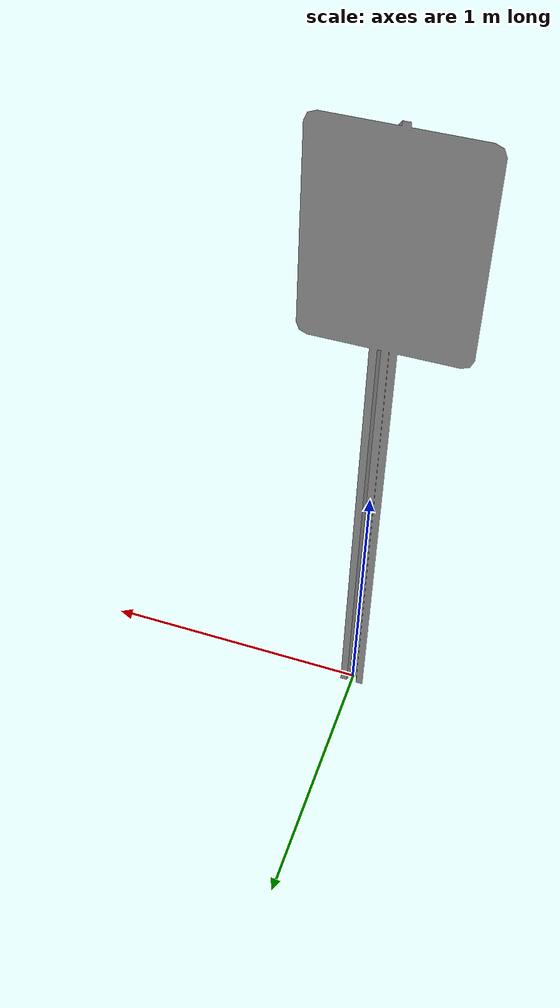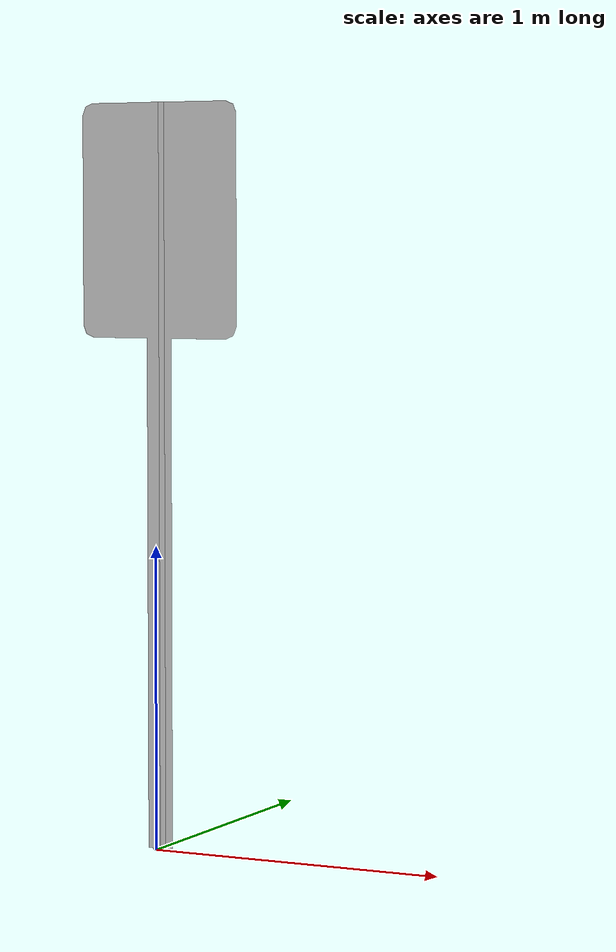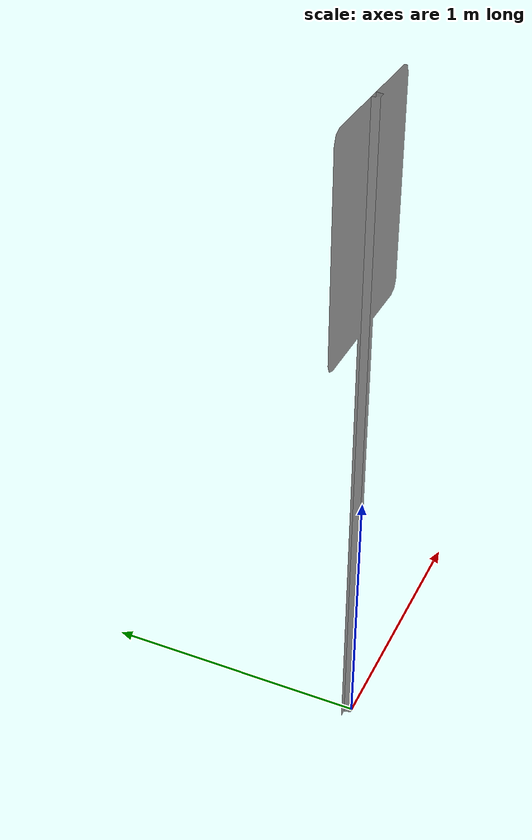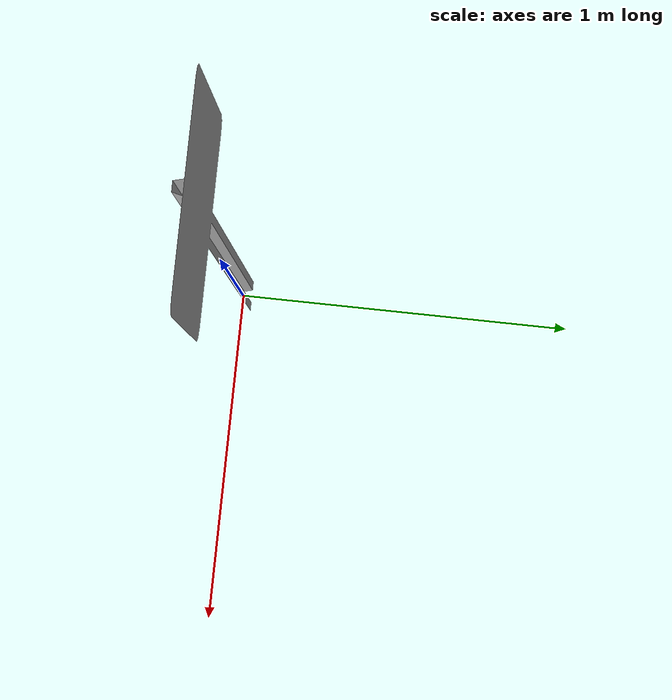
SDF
<?xml version="1.0"?>
<sdf version="1.4">

    <model name="limit20">
      <pose>0 0 0  0 0 0</pose>
      <static>true</static>
      <link name="body">
        <visual name="visual">
          <pose>0 0 0 0 0 0</pose>
	  <geometry>
            <mesh><uri>model://limit20/limit20.dae</uri></mesh>

	  </geometry>
        </visual>
	<collision name="collision">
	  <pose>0 0 0 0 0 0</pose>
	  <geometry>
	    <mesh><uri>model://limit20/limit20.dae</uri></mesh>
	  </geometry>
	</collision>
      </link>
    </model>
</sdf>
